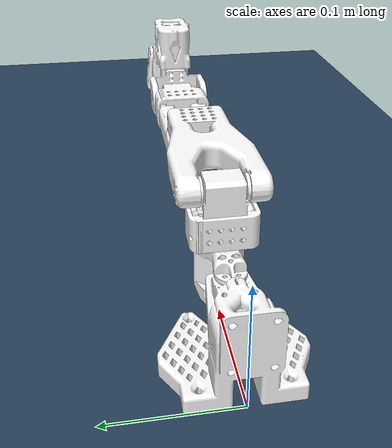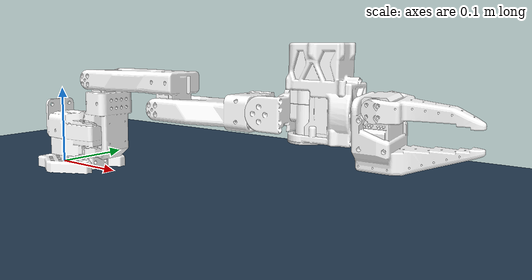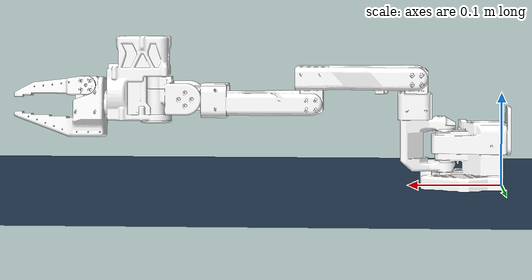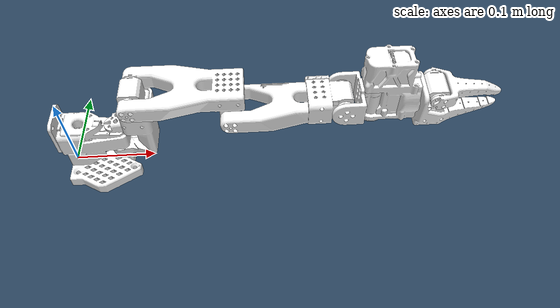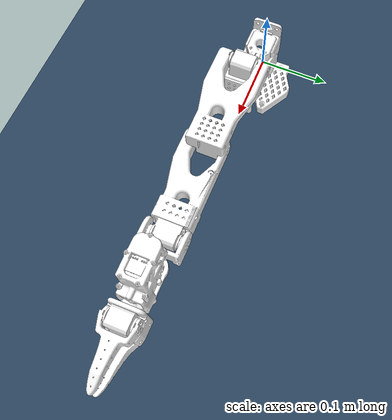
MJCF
<mujoco model="so_arm100_scene">
  <include file="so100_plus.xml"/>

  <statistic center="0 -0.2 0.1" extent="0.4"/>

  <visual>
    <headlight diffuse="0.6 0.6 0.6" ambient="0.3 0.3 0.3" specular="0 0 0"/>
    <rgba haze="0.15 0.25 0.35 1"/>
    <global azimuth="140" elevation="-30"/>
  </visual>

  <asset>
    <!-- Table dimensions (length x width x height in meters): 1.21x0.76x0.75 -->
    <texture type="skybox" builtin="gradient" rgb1="0.3 0.5 0.7" rgb2="0 0 0" width="512" height="3072"/>
    <texture type="2d" name="groundplane" builtin="checker" mark="edge" rgb1="0.2 0.3 0.4" rgb2="0.1 0.2 0.3"
      markrgb="0.8 0.8 0.8" width="300" height="300"/>
    <texture type="2d" file="assets/table/small_meta_table_diffuse.png"/>
    <material name="groundplane" texture="groundplane" texuniform="true" texrepeat="5 5" reflectance="0.2"/>
  </asset>

  <worldbody>
    <light pos="0 0 1.5" dir="0 0 -1" directional="true"/>
    <geom name="floor" size="0 0 0.05" type="plane" material="groundplane"/>
  </worldbody>
</mujoco>

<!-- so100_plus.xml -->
<mujoco model="SO_6">
  <compiler angle="radian" meshdir="assets_plus/"/>

  <asset>
    <material name="white" rgba="1.0 1.0 1.0 1.0" specular="0.1" shininess="0.1"/>
    <mesh name="base_link" file="base_link.STL"/>
    <mesh name="shoulder_rotation" file="shoulder_rotation.STL"/>
    <mesh name="shoulder_pitch" file="shoulder_pitch.STL"/>
    <mesh name="ellbow" file="ellbow.STL"/>
    <mesh name="wrist_pitch" file="wrist_pitch.STL"/>
    <mesh name="wrist_jaw" file="wrist_jaw.STL"/>
    <mesh name="wrist_roll" file="wrist_roll.STL"/>
    <mesh name="gripper" file="gripper.STL"/>
  </asset>

  <default>
    <default class="so_arm100">
      <joint frictionloss="0.1" armature="0.1"/>

      <default class="Rotation">
        <joint axis="0 1 0" range="-2.2 2.2"/>
        <position kp="50" dampratio="1" forcerange="-35 35" ctrlrange="-2.2 2.2"/>
      </default>
      <default class="Pitch">
        <joint axis="1 0 0" range="-3.14158 0.2"/>
        <position kp="50" dampratio="1" forcerange="-35 35" ctrlrange="-3.14158 0.2"/>
      </default>
      <default class="Elbow">
        <joint axis="1 0 0" range="0 3.14158"/>
        <position kp="50" dampratio="1" forcerange="-35 35" ctrlrange="0 3.14158"/>
      </default>
      <default class="Wrist_Pitch">
        <joint axis="1 0 0" range="-2.0 1.8"/>
        <position kp="50" dampratio="1" forcerange="-35 35" ctrlrange="-2.0 1.8"/>
      </default>
      <default class="Wrist_Jaw">
        <joint axis="0 0 1" range="-1.45 1.45"/>
        <position kp="50" dampratio="1" forcerange="-35 35" ctrlrange="-1.45 1.45"/>
      </default>
      <default class="Wrist_Roll">
        <joint axis="0 1 0" range="-3.14158 3.14158"/>
        <position kp="50" dampratio="1" forcerange="-35 35" ctrlrange="-3.14158 3.14158"/>
      </default>
      <default class="Jaw">
        <joint axis="0 0 1" range="-0.2 2.0"/>
        <position kp="50" dampratio="1" forcerange="-35 35" ctrlrange="-0.2 2.0"/>
      </default>
      <default class="visual">
        <geom type="mesh" contype="0" conaffinity="0" density="0" group="2" material="white"/>
        <default class="motor_visual">
          <geom material="black"/>
        </default>
      </default>
      <default class="collision">
        <geom group="3" type="mesh"/>
        <default class="finger_collision">
          <geom type="box" solimp="2 1 0.01" solref="0.01 1" friction="1 0.005 0.0001"/>
        </default>
      </default>
    </default>
  </default>

  <worldbody>
    <body name="base" childclass="so_arm100">
      <geom type="mesh" mesh="base_link" class="visual"/>
      <geom type="mesh" mesh="base_link" class="collision"/>
      <body name="shoulder_rotation" pos="0.0612 0 0.0623">
        <inertial pos="0.031241 -9.1232e-05 0.01108" quat="0.980864 -0.00621211 0.0833514 -0.175841" mass="0.11865" diaginertia="5.94116e-05 5.89816e-05 3.13398e-05"/>
        <joint name="shoulder_rotation_joint" class="Rotation" pos="0 0 0" axis="0 0 1"/>
        <geom type="mesh" mesh="shoulder_rotation" class="visual"/>
        <geom type="mesh" mesh="shoulder_rotation" class="collision"/>
        <body name="shoulder_pitch" pos="0.0306 0 0.0542" quat="0.707105 -0.707108 0 0">
          <inertial pos="0.07018 0.0031055 -0.00011721" quat="0.500964 0.506396 0.498918 0.493639" mass="0.16241" diaginertia="0.000213311 0.000167161 7.01525e-05"/>
          <joint name="shoulder_pitch_joint" class="Pitch" pos="0 0 0" axis="0 0 1"/>
          <geom type="mesh" mesh="shoulder_pitch" class="visual"/>
          <geom type="mesh" mesh="shoulder_pitch" class="collision"/>
          <body name="ellbow" pos="0.11257 0.028 0">
            <inertial pos="0.076801 -0.001378 -0.003496" quat="0.54204 0.442688 0.45073 0.554131" mass="0.14797" diaginertia="0.000138806 0.000107744 4.8424e-05"/>
            <joint name="ellbow_joint" class="Elbow" pos="0 0 0" axis="0 0 1"/>
            <geom type="mesh" mesh="ellbow" class="visual"/>
            <geom type="mesh" mesh="ellbow" class="collision"/>
            <body name="wrist_pitch" pos="0.1349 -0.0052 0">
              <inertial pos="0.01987 -8.6474e-05 -0.0011098" quat="0.509933 0.859957 -0.019182 -0.00865843" mass="0.039787" diaginertia="5.47838e-06 4.44848e-06 4.31554e-06"/>
              <joint name="wrist_pitch_joint" class="Wrist_Pitch" pos="0 0 0" axis="0 0 -1"/>
              <geom type="mesh" mesh="wrist_pitch" class="visual"/>
              <geom type="mesh" mesh="wrist_pitch" class="collision"/>
              <body name="wrist_jaw" pos="0.0345 0 -0.0012" quat="0.707105 0.707108 0 0">
                <inertial pos="0.0226121 1.10298e-07 0.0227845" quat="0.446635 0.548194 0.548175 0.446659" mass="0.129207" diaginertia="4.30694e-05 3.72107e-05 2.90573e-05"/>
                <joint name="wrist_jaw_joint" class="Wrist_Jaw" pos="0 0 0" axis="0 0 -1"/>
                <geom type="mesh" mesh="wrist_jaw" class="visual"/>
                <geom type="mesh" mesh="wrist_jaw" class="collision"/>
                <body name="wrist_roll" pos="0.0488 0 -0.0075" quat="0.707105 0 0.707108 0">
                  <inertial pos="0.0054721 0.00096004 0.028413" quat="0.70511 0.135485 0.15656 0.678198" mass="0.093165" diaginertia="5.03437e-05 4.64877e-05 2.73546e-05"/>
                  <joint name="wrist_roll_joint" class="Wrist_Roll" pos="0 0 0" axis="0 0 1"/>
                  <geom type="mesh" mesh="wrist_roll" class="visual"/>
                  <geom type="mesh" mesh="wrist_roll" class="collision"/>
                  <body name="gripper" pos="-0.020398 0.0012 0.0248" quat="-2.59734e-06 -2.59735e-06 0.707108 0.707105">
                    <inertial pos="-0.0019417 0.030396 -0.0033973" quat="0.693415 0.718265 0.0561983 -0.0105774" mass="0.020214" diaginertia="1.10841e-05 8.97088e-06 2.97828e-06"/>
                    <joint name="gripper_joint" class="Jaw" pos="0 0 0" axis="0 0 -1"/>
                    <geom type="mesh" mesh="gripper" class="visual"/>
                    <geom type="mesh" mesh="gripper" class="collision"/>
                  </body>
                </body>
              </body>
            </body>
          </body>
        </body>
      </body>
    </body>
  </worldbody>

  <actuator>
    <position class="Rotation" name="Rotation" joint="shoulder_rotation_joint"/>
    <position class="Pitch" name="Pitch" joint="shoulder_pitch_joint"/>
    <position class="Elbow" name="Elbow" joint="ellbow_joint"/>
    <position class="Wrist_Pitch" name="Wrist_Pitch" joint="wrist_pitch_joint"/>
    <position class="Wrist_Jaw" name="Wrist_Jaw" joint="wrist_jaw_joint" />
    <position class="Wrist_Roll" name="Wrist_Roll" joint="wrist_roll_joint"/>
    <position class="Jaw" name="Jaw" joint="gripper_joint"/>
  </actuator>

  <contact>
    <exclude body1="base" body2="shoulder_rotation"/>
  </contact>

  <keyframe>
    <key name="home" qpos="0 -1.57079 1.57079 0 0 0 0" ctrl="0 -1.57079 1.57079 0 0 0 0"/>
  </keyframe>
</mujoco>
